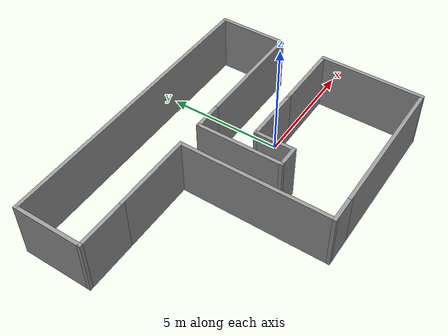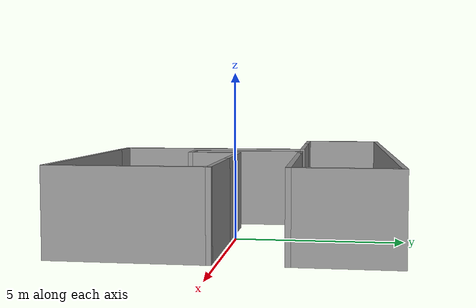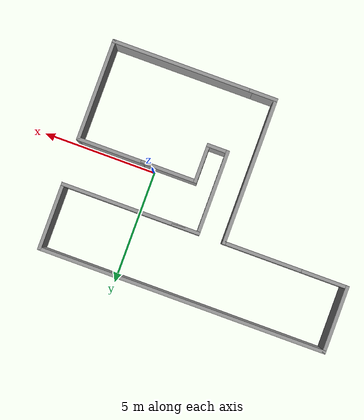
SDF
<?xml version='1.0'?>
<sdf version='1.7'>
  <model name='thin_wall_1'>
    <pose>-2.935 0.07 0 0 -0 0</pose>
    <link name='Wall_0'>
      <collision name='Wall_0_Collision'>
        <geometry>
          <box>
            <size>6.25 0.15 2.5</size>
          </box>
        </geometry>
        <pose>0 0 1.25 0 -0 0</pose>
      </collision>
      <visual name='Wall_0_Visual'>
        <pose>0 0 1.25 0 -0 0</pose>
        <geometry>
          <box>
            <size>6.25 0.15 2.5</size>
          </box>
        </geometry>
        <material>
          <script>
            <uri>file://media/materials/scripts/gazebo.material</uri>
            <name>Gazebo/Grey</name>
          </script>
          <ambient>1 1 1 1</ambient>
        </material>
        <meta>
          <layer>0</layer>
        </meta>
      </visual>
      <pose>3.275 -4.6 0 0 -0 0</pose>
    </link>
    <link name='Wall_1'>
      <collision name='Wall_1_Collision'>
        <geometry>
          <box>
            <size>4.5 0.15 2.5</size>
          </box>
        </geometry>
        <pose>0 0 1.25 0 -0 0</pose>
      </collision>
      <visual name='Wall_1_Visual'>
        <pose>0 0 1.25 0 -0 0</pose>
        <geometry>
          <box>
            <size>4.5 0.15 2.5</size>
          </box>
        </geometry>
        <material>
          <script>
            <uri>file://media/materials/scripts/gazebo.material</uri>
            <name>Gazebo/Grey</name>
          </script>
          <ambient>1 1 1 1</ambient>
        </material>
        <meta>
          <layer>0</layer>
        </meta>
      </visual>
      <pose>6.325 -2.425 0 0 -0 1.5708</pose>
    </link>
    <link name='Wall_11'>
      <collision name='Wall_11_Collision'>
        <geometry>
          <box>
            <size>1.25 0.15 2.5</size>
          </box>
        </geometry>
        <pose>0 0 1.25 0 -0 0</pose>
      </collision>
      <visual name='Wall_11_Visual'>
        <pose>0 0 1.25 0 -0 0</pose>
        <geometry>
          <box>
            <size>1.25 0.15 2.5</size>
          </box>
        </geometry>
        <material>
          <script>
            <uri>file://media/materials/scripts/gazebo.material</uri>
            <name>Gazebo/Grey</name>
          </script>
          <ambient>1 1 1 1</ambient>
        </material>
        <meta>
          <layer>0</layer>
        </meta>
      </visual>
      <pose>-0.325 -4.6 0 0 -0 3.14159</pose>
    </link>
    <link name='Wall_12'>
      <collision name='Wall_12_Collision'>
        <geometry>
          <box>
            <size>6.5 0.15 2.5</size>
          </box>
        </geometry>
        <pose>0 0 1.25 0 -0 0</pose>
      </collision>
      <visual name='Wall_12_Visual'>
        <pose>0 0 1.25 0 -0 0</pose>
        <geometry>
          <box>
            <size>6.5 0.15 2.5</size>
          </box>
        </geometry>
        <material>
          <script>
            <uri>file://media/materials/scripts/gazebo.material</uri>
            <name>Gazebo/Grey</name>
          </script>
          <ambient>1 1 1 1</ambient>
        </material>
        <meta>
          <layer>0</layer>
        </meta>
      </visual>
      <pose>-0.875 -1.425 0 0 -0 1.5708</pose>
    </link>
    <link name='Wall_13'>
      <collision name='Wall_13_Collision'>
        <geometry>
          <box>
            <size>3.5 0.15 2.5</size>
          </box>
        </geometry>
        <pose>0 0 1.25 0 -0 0</pose>
      </collision>
      <visual name='Wall_13_Visual'>
        <pose>0 0 1.25 0 -0 0</pose>
        <geometry>
          <box>
            <size>3.5 0.15 2.5</size>
          </box>
        </geometry>
        <material>
          <script>
            <uri>file://media/materials/scripts/gazebo.material</uri>
            <name>Gazebo/Grey</name>
          </script>
          <ambient>1 1 1 1</ambient>
        </material>
        <meta>
          <layer>0</layer>
        </meta>
      </visual>
      <pose>-2.55 1.75 0 0 -0 3.14159</pose>
    </link>
    <link name='Wall_15'>
      <collision name='Wall_15_Collision'>
        <geometry>
          <box>
            <size>2.25 0.15 2.5</size>
          </box>
        </geometry>
        <pose>0 0 1.25 0 -0 0</pose>
      </collision>
      <visual name='Wall_15_Visual'>
        <pose>0 0 1.25 0 -0 0</pose>
        <geometry>
          <box>
            <size>2.25 0.15 2.5</size>
          </box>
        </geometry>
        <material>
          <script>
            <uri>file://media/materials/scripts/gazebo.material</uri>
            <name>Gazebo/Grey</name>
          </script>
          <ambient>1 1 1 1</ambient>
        </material>
        <meta>
          <layer>0</layer>
        </meta>
      </visual>
      <pose>-5.275 1.75 0 0 -0 3.14159</pose>
    </link>
    <link name='Wall_16'>
      <collision name='Wall_16_Collision'>
        <geometry>
          <box>
            <size>3 0.15 2.5</size>
          </box>
        </geometry>
        <pose>0 0 1.25 0 -0 0</pose>
      </collision>
      <visual name='Wall_16_Visual'>
        <pose>0 0 1.25 0 -0 0</pose>
        <geometry>
          <box>
            <size>3 0.15 2.5</size>
          </box>
        </geometry>
        <material>
          <script>
            <uri>file://media/materials/scripts/gazebo.material</uri>
            <name>Gazebo/Grey</name>
          </script>
          <ambient>1 1 1 1</ambient>
        </material>
        <meta>
          <layer>0</layer>
        </meta>
      </visual>
      <pose>-6.325 3.175 0 0 -0 1.5708</pose>
    </link>
    <link name='Wall_17'>
      <collision name='Wall_17_Collision'>
        <geometry>
          <box>
            <size>12.75 0.15 2.5</size>
          </box>
        </geometry>
        <pose>0 0 1.25 0 -0 0</pose>
      </collision>
      <visual name='Wall_17_Visual'>
        <pose>0 0 1.25 0 -0 0</pose>
        <geometry>
          <box>
            <size>12.75 0.15 2.5</size>
          </box>
        </geometry>
        <material>
          <script>
            <uri>file://media/materials/scripts/gazebo.material</uri>
            <name>Gazebo/Grey</name>
          </script>
          <ambient>1 1 1 1</ambient>
        </material>
        <meta>
          <layer>0</layer>
        </meta>
      </visual>
      <pose>-0.025 4.6 0 0 -0 0</pose>
    </link>
    <link name='Wall_18'>
      <collision name='Wall_18_Collision'>
        <geometry>
          <box>
            <size>3 0.15 2.5</size>
          </box>
        </geometry>
        <pose>0 0 1.25 0 -0 0</pose>
      </collision>
      <visual name='Wall_18_Visual'>
        <pose>0 0 1.25 0 -0 0</pose>
        <geometry>
          <box>
            <size>3 0.15 2.5</size>
          </box>
        </geometry>
        <material>
          <script>
            <uri>file://media/materials/scripts/gazebo.material</uri>
            <name>Gazebo/Grey</name>
          </script>
          <ambient>1 1 1 1</ambient>
        </material>
        <meta>
          <layer>0</layer>
        </meta>
      </visual>
      <pose>6.275 3.175 0 0 -0 -1.5708</pose>
    </link>
    <link name='Wall_19'>
      <collision name='Wall_19_Collision'>
        <geometry>
          <box>
            <size>5.5 0.15 2.5</size>
          </box>
        </geometry>
        <pose>0 0 1.25 0 -0 0</pose>
      </collision>
      <visual name='Wall_19_Visual'>
        <pose>0 0 1.25 0 -0 0</pose>
        <geometry>
          <box>
            <size>5.5 0.15 2.5</size>
          </box>
        </geometry>
        <material>
          <script>
            <uri>file://media/materials/scripts/gazebo.material</uri>
            <name>Gazebo/Grey</name>
          </script>
          <ambient>1 1 1 1</ambient>
        </material>
        <meta>
          <layer>0</layer>
        </meta>
      </visual>
      <pose>3.6 1.75 0 0 -0 3.14159</pose>
    </link>
    <link name='Wall_2'>
      <collision name='Wall_2_Collision'>
        <geometry>
          <box>
            <size>3 0.15 2.5</size>
          </box>
        </geometry>
        <pose>0 0 1.25 0 -0 0</pose>
      </collision>
      <visual name='Wall_2_Visual'>
        <pose>0 0 1.25 0 -0 0</pose>
        <geometry>
          <box>
            <size>3 0.15 2.5</size>
          </box>
        </geometry>
        <material>
          <script>
            <uri>file://media/materials/scripts/gazebo.material</uri>
            <name>Gazebo/Grey</name>
          </script>
          <ambient>1 1 1 1</ambient>
        </material>
        <meta>
          <layer>0</layer>
        </meta>
      </visual>
      <pose>4.9 -0.25 0 0 -0 3.14159</pose>
    </link>
    <link name='Wall_4'>
      <collision name='Wall_4_Collision'>
        <geometry>
          <box>
            <size>2.5 0.15 2.5</size>
          </box>
        </geometry>
        <pose>0 0 1.25 0 -0 0</pose>
      </collision>
      <visual name='Wall_4_Visual'>
        <pose>0 0 1.25 0 -0 0</pose>
        <geometry>
          <box>
            <size>2.5 0.15 2.5</size>
          </box>
        </geometry>
        <material>
          <script>
            <uri>file://media/materials/scripts/gazebo.material</uri>
            <name>Gazebo/Grey</name>
          </script>
          <ambient>1 1 1 1</ambient>
        </material>
        <meta>
          <layer>0</layer>
        </meta>
      </visual>
      <pose>2.3 -0.25 0 0 -0 3.14159</pose>
    </link>
    <link name='Wall_5'>
      <collision name='Wall_5_Collision'>
        <geometry>
          <box>
            <size>1.75 0.15 2.5</size>
          </box>
        </geometry>
        <pose>0 0 1.25 0 -0 0</pose>
      </collision>
      <visual name='Wall_5_Visual'>
        <pose>0 0 1.25 0 -0 0</pose>
        <geometry>
          <box>
            <size>1.75 0.15 2.5</size>
          </box>
        </geometry>
        <material>
          <script>
            <uri>file://media/materials/scripts/gazebo.material</uri>
            <name>Gazebo/Grey</name>
          </script>
          <ambient>1 1 1 1</ambient>
        </material>
        <meta>
          <layer>0</layer>
        </meta>
      </visual>
      <pose>1.125 -1.05 0 0 -0 -1.5708</pose>
    </link>
    <link name='Wall_6'>
      <collision name='Wall_6_Collision'>
        <geometry>
          <box>
            <size>1 0.15 2.5</size>
          </box>
        </geometry>
        <pose>0 0 1.25 0 -0 0</pose>
      </collision>
      <visual name='Wall_6_Visual'>
        <pose>0 0 1.25 0 -0 0</pose>
        <geometry>
          <box>
            <size>1 0.15 2.5</size>
          </box>
        </geometry>
        <material>
          <script>
            <uri>file://media/materials/scripts/gazebo.material</uri>
            <name>Gazebo/Grey</name>
          </script>
          <ambient>1 1 1 1</ambient>
        </material>
        <meta>
          <layer>0</layer>
        </meta>
      </visual>
      <pose>0.7 -1.85 0 0 -0 3.14159</pose>
    </link>
    <link name='Wall_8'>
      <collision name='Wall_8_Collision'>
        <geometry>
          <box>
            <size>3.75 0.15 2.5</size>
          </box>
        </geometry>
        <pose>0 0 1.25 0 -0 0</pose>
      </collision>
      <visual name='Wall_8_Visual'>
        <pose>0 0 1.25 0 -0 0</pose>
        <geometry>
          <box>
            <size>3.75 0.15 2.5</size>
          </box>
        </geometry>
        <material>
          <script>
            <uri>file://media/materials/scripts/gazebo.material</uri>
            <name>Gazebo/Grey</name>
          </script>
          <ambient>1 1 1 1</ambient>
        </material>
        <meta>
          <layer>0</layer>
        </meta>
      </visual>
      <pose>0.275 -0.05 0 0 -0 1.5708</pose>
    </link>
    <link name='Wall_9'>
      <collision name='Wall_9_Collision'>
        <geometry>
          <box>
            <size>1.25 0.15 2.5</size>
          </box>
        </geometry>
        <pose>0 0 1.25 0 -0 0</pose>
      </collision>
      <visual name='Wall_9_Visual'>
        <pose>0 0 1.25 0 -0 0</pose>
        <geometry>
          <box>
            <size>1.25 0.15 2.5</size>
          </box>
        </geometry>
        <material>
          <script>
            <uri>file://media/materials/scripts/gazebo.material</uri>
            <name>Gazebo/Grey</name>
          </script>
          <ambient>1 1 1 1</ambient>
        </material>
        <meta>
          <layer>0</layer>
        </meta>
      </visual>
      <pose>0.825 1.75 0 0 -0 0</pose>
    </link>
    <static>1</static>
  </model>
</sdf>
